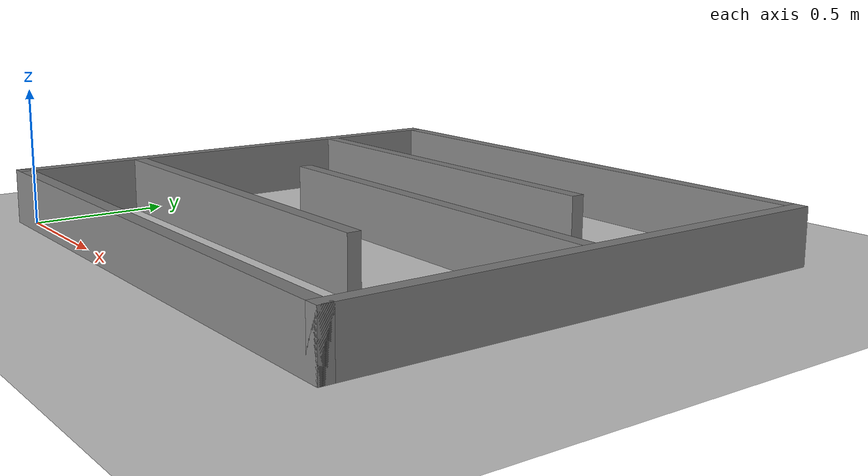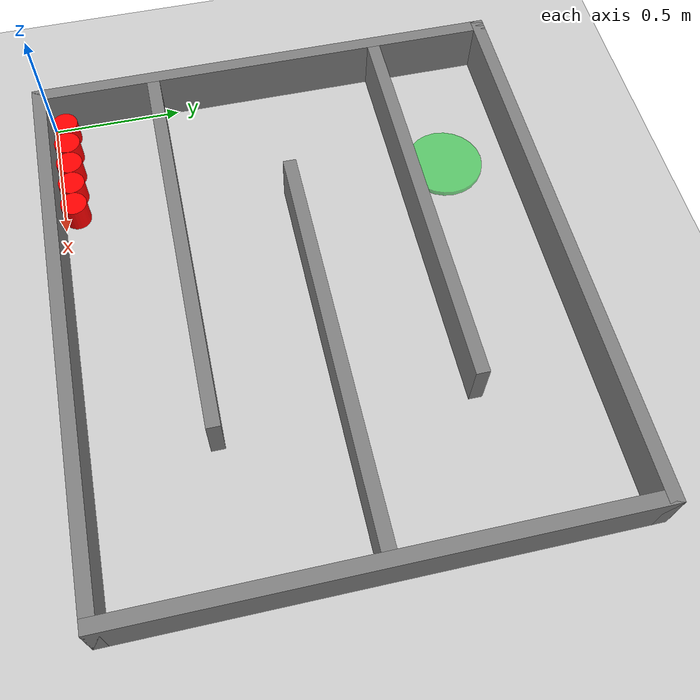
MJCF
<mujoco model="five_robots">
  <compiler angle="radian"/>
  <option timestep="0.01" gravity="0 0 0"/>

  <worldbody>
    <light name="sun" pos="0 0 5"/>
    <geom name="floor" type="plane" size="5 5 0.1" rgba="0.8 0.8 0.8 1"/>

    <!-- wall begin -->
    <geom name="outer_left"   type="box" pos="-0.025 0.875 0.1" size="0.025 0.925 0.1"/>
    <geom name="outer_right"  type="box" pos="2.025 0.875 0.1"  size="0.025 0.925 0.1"/>
    <geom name="outer_bottom" type="box" pos="1.0 -0.025 0.1"   size="1.05 0.025 0.1"/>
    <geom name="outer_top"    type="box" pos="1.0 1.775 0.1"    size="1.05 0.025 0.1"/>

    <geom name="wall_low"     type="box" pos="0.75 0.425 0.1"   size="0.75 0.025 0.1"/>
    <geom name="wall_mid"     type="box" pos="1.25 0.875 0.1"   size="0.75 0.025 0.1"/>
    <geom name="wall_high"    type="box" pos="0.75 1.325 0.1"   size="0.75 0.025 0.1"/>
    <!-- wall end -->

    <body name="target_body" pos="0.5 1.5 0.01">
      <geom
        name="target_marker"
        type="cylinder"
        size="0.15 0.01"
        rgba="0.1 0.8 0.2 0.6"
        contype="0"
        conaffinity="0"
      />
    </body>

    <body name="robot_0" pos="0.05 0.05 0.05">
      <joint name="robot_0_x" type="slide" axis="1 0 0"/>
      <joint name="robot_0_y" type="slide" axis="0 1 0"/>

      <geom
        name="robot_0_cylinder"
        type="cylinder"
        size="0.05 0.05"
        mass="1.0"
        rgba="1 0 0 1"
      />
    </body>

    <body name="robot_1" pos="0.15 0.05 0.05">
      <joint name="robot_1_x" type="slide" axis="1 0 0"/>
      <joint name="robot_1_y" type="slide" axis="0 1 0"/>

      <geom
        name="robot_1_cylinder"
        type="cylinder"
        size="0.05 0.05"
        mass="1.0"
        rgba="1 0 0 1"
      />
    </body>

    <body name="robot_2" pos="0.25 0.05 0.05">
      <joint name="robot_2_x" type="slide" axis="1 0 0"/>
      <joint name="robot_2_y" type="slide" axis="0 1 0"/>

      <geom
        name="robot_2_cylinder"
        type="cylinder"
        size="0.05 0.05"
        mass="1.0"
        rgba="1 0 0 1"
      />
    </body>

    <body name="robot_3" pos="0.35 0.05 0.05">
      <joint name="robot_3_x" type="slide" axis="1 0 0"/>
      <joint name="robot_3_y" type="slide" axis="0 1 0"/>

      <geom
        name="robot_3_cylinder"
        type="cylinder"
        size="0.05 0.05"
        mass="1.0"
        rgba="1 0 0 1"
      />
    </body>

    <body name="robot_4" pos="0.45 0.05 0.05">
      <joint name="robot_4_x" type="slide" axis="1 0 0"/>
      <joint name="robot_4_y" type="slide" axis="0 1 0"/>

      <geom
        name="robot_4_cylinder"
        type="cylinder"
        size="0.05 0.05"
        mass="1.0"
        rgba="1 0 0 1"
      />
    </body>

  </worldbody>

  <actuator>

    <velocity name="robot_0_vx" joint="robot_0_x" kv="10" ctrllimited="true" ctrlrange="-0.2 0.2"/>
    <velocity name="robot_0_vy" joint="robot_0_y" kv="10" ctrllimited="true" ctrlrange="-0.2 0.2"/>

    <velocity name="robot_1_vx" joint="robot_1_x" kv="10" ctrllimited="true" ctrlrange="-0.2 0.2"/>
    <velocity name="robot_1_vy" joint="robot_1_y" kv="10" ctrllimited="true" ctrlrange="-0.2 0.2"/>

    <velocity name="robot_2_vx" joint="robot_2_x" kv="10" ctrllimited="true" ctrlrange="-0.2 0.2"/>
    <velocity name="robot_2_vy" joint="robot_2_y" kv="10" ctrllimited="true" ctrlrange="-0.2 0.2"/>

    <velocity name="robot_3_vx" joint="robot_3_x" kv="10" ctrllimited="true" ctrlrange="-0.2 0.2"/>
    <velocity name="robot_3_vy" joint="robot_3_y" kv="10" ctrllimited="true" ctrlrange="-0.2 0.2"/>

    <velocity name="robot_4_vx" joint="robot_4_x" kv="10" ctrllimited="true" ctrlrange="-0.2 0.2"/>
    <velocity name="robot_4_vy" joint="robot_4_y" kv="10" ctrllimited="true" ctrlrange="-0.2 0.2"/>

  </actuator>
</mujoco>
